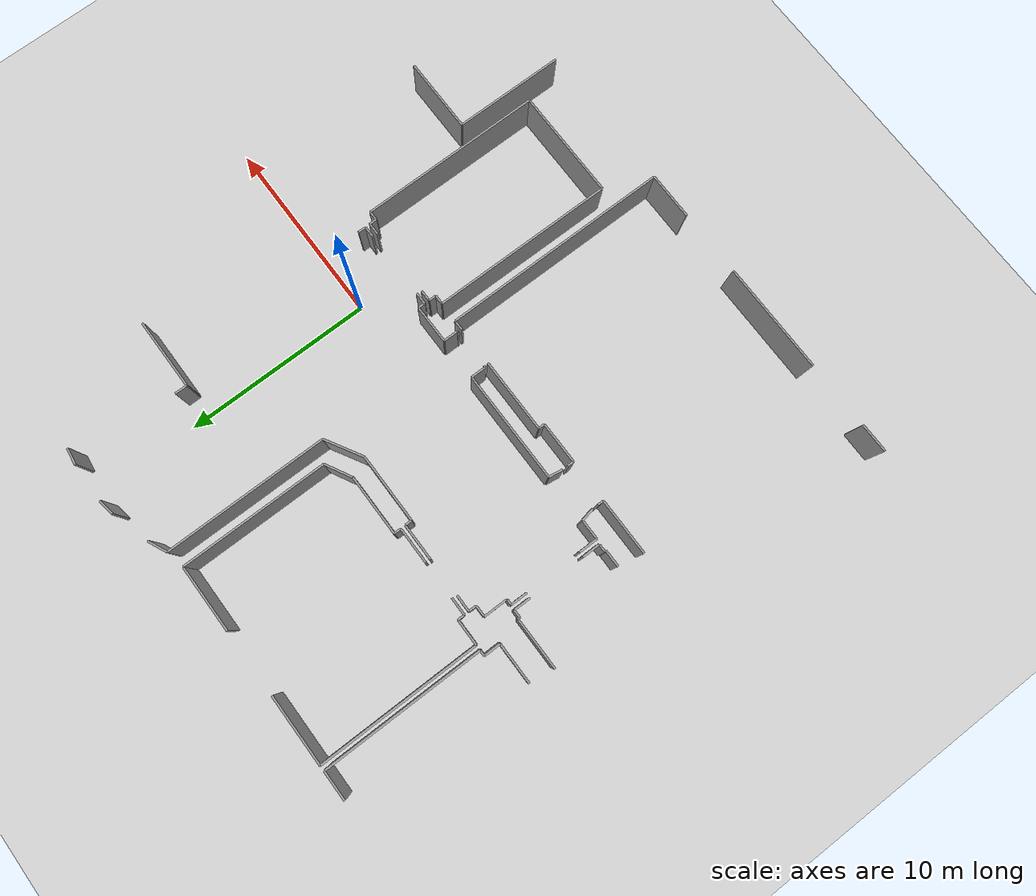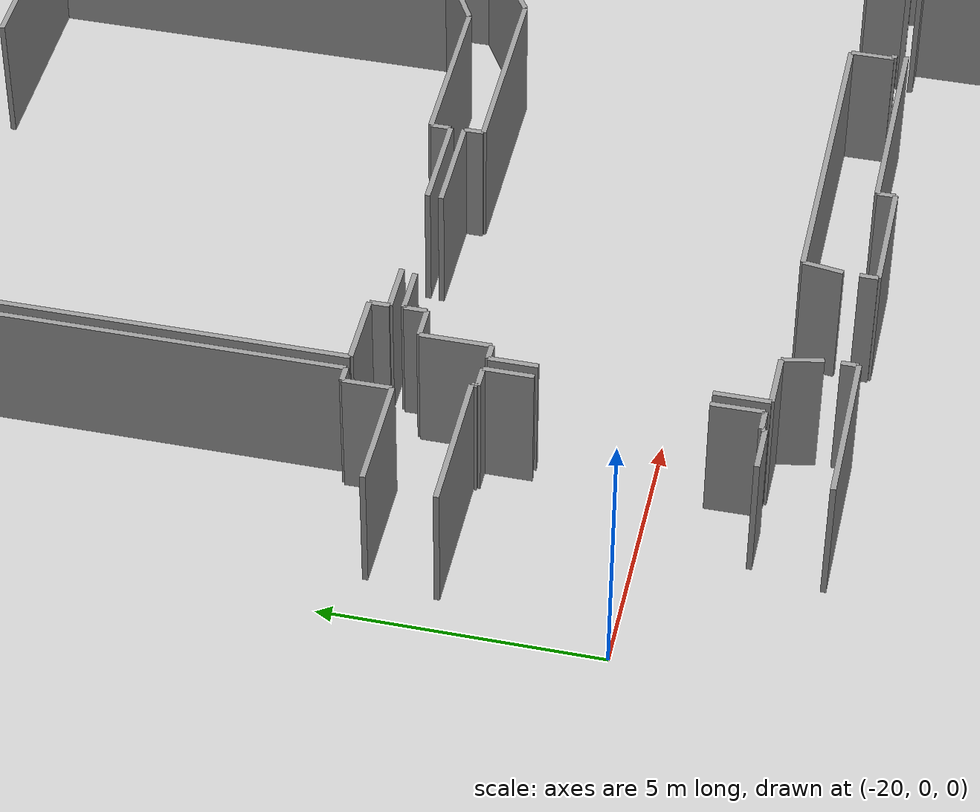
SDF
<sdf version="1.6">
 <world name="default">
  <model name="ground_plane">
   <static>1</static>
   <link name="link">
    <collision name="collision">
     <geometry><plane><normal>0 0 1</normal><size>100 100</size></plane></geometry>
     <surface><friction><ode><mu>100</mu><mu2>50</mu2></ode></friction></surface>
    </collision>
    <visual name="visual">
     <cast_shadows>0</cast_shadows>
     <geometry><plane><normal>0 0 1</normal><size>100 100</size></plane></geometry>
     <material>
      <script><uri>file://media/materials/scripts/gazebo.material</uri><name>Gazebo/Grey</name></script>
     </material>
    </visual>
   </link>
  </model>
  <model name="50056457">
   <static>1</static>
   <link name="Wall_33">
    <collision name="Wall_33_Collision">
     <geometry><box><size>0.412661036904 0.1 2.5</size></box></geometry>
     <pose>0.206330518452 0 1.25 0 0 0</pose>
    </collision>
    <visual name="Wall_33_Visual">
     <pose>0.206330518452 0 1.25 0 0 0</pose>
     <geometry><box><size>0.412661036904 0.1 2.5</size></box></geometry>
     <material>
      <script><uri>file://media/materials/scripts/gazebo.material</uri><name>Gazebo/Grey</name></script>
      <ambient>1 1 1 1</ambient>
     </material>
    </visual>
    <pose>38.6041350804 -16.9038564156 0 0 0 3.14159265359</pose>
   </link>
   <link name="Wall_34">
    <collision name="Wall_34_Collision">
     <geometry><box><size>0.0672522297417 0.1 2.5</size></box></geometry>
     <pose>0.0336261148709 0 1.25 0 0 0</pose>
    </collision>
    <visual name="Wall_34_Visual">
     <pose>0.0336261148709 0 1.25 0 0 0</pose>
     <geometry><box><size>0.0672522297417 0.1 2.5</size></box></geometry>
     <material>
      <script><uri>file://media/materials/scripts/gazebo.material</uri><name>Gazebo/Grey</name></script>
      <ambient>1 1 1 1</ambient>
     </material>
    </visual>
    <pose>38.1914740435 -16.9038564156 0 0 0 -1.57079632679</pose>
   </link>
   <link name="Wall_35">
    <collision name="Wall_35_Collision">
     <geometry><box><size>0.875803596385 0.1 2.5</size></box></geometry>
     <pose>0.437901798192 0 1.25 0 0 0</pose>
    </collision>
    <visual name="Wall_35_Visual">
     <pose>0.437901798192 0 1.25 0 0 0</pose>
     <geometry><box><size>0.875803596385 0.1 2.5</size></box></geometry>
     <material>
      <script><uri>file://media/materials/scripts/gazebo.material</uri><name>Gazebo/Grey</name></script>
      <ambient>1 1 1 1</ambient>
     </material>
    </visual>
    <pose>38.1914740435 -16.9711086454 0 0 0 3.14159265359</pose>
   </link>
   <link name="Wall_48">
    <collision name="Wall_48_Collision">
     <geometry><box><size>2.67704530632 0.1 2.5</size></box></geometry>
     <pose>1.33852265316 0 1.25 0 0 0</pose>
    </collision>
    <visual name="Wall_48_Visual">
     <pose>1.33852265316 0 1.25 0 0 0</pose>
     <geometry><box><size>2.67704530632 0.1 2.5</size></box></geometry>
     <material>
      <script><uri>file://media/materials/scripts/gazebo.material</uri><name>Gazebo/Grey</name></script>
      <ambient>1 1 1 1</ambient>
     </material>
    </visual>
    <pose>35.49765803 -11.9712356962 0 0 0 0.0</pose>
   </link>
   <link name="Wall_49">
    <collision name="Wall_49_Collision">
     <geometry><box><size>0.106553280875 0.1 2.5</size></box></geometry>
     <pose>0.0532766404377 0 1.25 0 0 0</pose>
    </collision>
    <visual name="Wall_49_Visual">
     <pose>0.0532766404377 0 1.25 0 0 0</pose>
     <geometry><box><size>0.106553280875 0.1 2.5</size></box></geometry>
     <material>
      <script><uri>file://media/materials/scripts/gazebo.material</uri><name>Gazebo/Grey</name></script>
      <ambient>1 1 1 1</ambient>
     </material>
    </visual>
    <pose>38.1747033364 -11.9712356962 0 0 0 -1.57079632679</pose>
   </link>
   <link name="Wall_50">
    <collision name="Wall_50_Collision">
     <geometry><box><size>0.421131091028 0.1 2.5</size></box></geometry>
     <pose>0.210565545514 0 1.25 0 0 0</pose>
    </collision>
    <visual name="Wall_50_Visual">
     <pose>0.210565545514 0 1.25 0 0 0</pose>
     <geometry><box><size>0.421131091028 0.1 2.5</size></box></geometry>
     <material>
      <script><uri>file://media/materials/scripts/gazebo.material</uri><name>Gazebo/Grey</name></script>
      <ambient>1 1 1 1</ambient>
     </material>
    </visual>
    <pose>38.1747033364 -12.0777889771 0 0 0 0.0</pose>
   </link>
   <link name="Wall_51">
    <collision name="Wall_51_Collision">
     <geometry><box><size>0.892743704632 0.1 2.5</size></box></geometry>
     <pose>0.446371852316 0 1.25 0 0 0</pose>
    </collision>
    <visual name="Wall_51_Visual">
     <pose>0.446371852316 0 1.25 0 0 0</pose>
     <geometry><box><size>0.892743704632 0.1 2.5</size></box></geometry>
     <material>
      <script><uri>file://media/materials/scripts/gazebo.material</uri><name>Gazebo/Grey</name></script>
      <ambient>1 1 1 1</ambient>
     </material>
    </visual>
    <pose>38.5958344274 -12.0777889771 0 0 0 -1.57079632679</pose>
   </link>
   <link name="Wall_52">
    <collision name="Wall_52_Collision">
     <geometry><box><size>0.934961421784 0.1 2.5</size></box></geometry>
     <pose>0.467480710892 0 1.25 0 0 0</pose>
    </collision>
    <visual name="Wall_52_Visual">
     <pose>0.467480710892 0 1.25 0 0 0</pose>
     <geometry><box><size>0.934961421784 0.1 2.5</size></box></geometry>
     <material>
      <script><uri>file://media/materials/scripts/gazebo.material</uri><name>Gazebo/Grey</name></script>
      <ambient>1 1 1 1</ambient>
     </material>
    </visual>
    <pose>38.5958344274 -15.9689318415 0 0 0 -1.56191814006</pose>
   </link>
   <link name="Wall_76">
    <collision name="Wall_76_Collision">
     <geometry><box><size>2.13089621643 0.1 2.5</size></box></geometry>
     <pose>1.06544810821 0 1.25 0 0 0</pose>
    </collision>
    <visual name="Wall_76_Visual">
     <pose>1.06544810821 0 1.25 0 0 0</pose>
     <geometry><box><size>2.13089621643 0.1 2.5</size></box></geometry>
     <material>
      <script><uri>file://media/materials/scripts/gazebo.material</uri><name>Gazebo/Grey</name></script>
      <ambient>1 1 1 1</ambient>
     </material>
    </visual>
    <pose>37.812523822 -10.6881918975 0 0 0 3.14159265359</pose>
   </link>
   <link name="Wall_82">
    <collision name="Wall_82_Collision">
     <geometry><box><size>1.53121638447 0.1 2.5</size></box></geometry>
     <pose>0.765608192236 0 1.25 0 0 0</pose>
    </collision>
    <visual name="Wall_82_Visual">
     <pose>0.765608192236 0 1.25 0 0 0</pose>
     <geometry><box><size>1.53121638447 0.1 2.5</size></box></geometry>
     <material>
      <script><uri>file://media/materials/scripts/gazebo.material</uri><name>Gazebo/Grey</name></script>
      <ambient>1 1 1 1</ambient>
     </material>
    </visual>
    <pose>36.58216376 -1.3753673886 0 0 0 0.0</pose>
   </link>
   <link name="Wall_83">
    <collision name="Wall_83_Collision">
     <geometry><box><size>8.44091713746 0.1 2.5</size></box></geometry>
     <pose>4.22045856873 0 1.25 0 0 0</pose>
    </collision>
    <visual name="Wall_83_Visual">
     <pose>4.22045856873 0 1.25 0 0 0</pose>
     <geometry><box><size>8.44091713746 0.1 2.5</size></box></geometry>
     <material>
      <script><uri>file://media/materials/scripts/gazebo.material</uri><name>Gazebo/Grey</name></script>
      <ambient>1 1 1 1</ambient>
     </material>
    </visual>
    <pose>38.1133801445 -1.3753673886 0 0 0 -1.57079632679</pose>
   </link>
   <link name="Wall_84">
    <collision name="Wall_84_Collision">
     <geometry><box><size>0.302380932214 0.1 2.5</size></box></geometry>
     <pose>0.151190466107 0 1.25 0 0 0</pose>
    </collision>
    <visual name="Wall_84_Visual">
     <pose>0.151190466107 0 1.25 0 0 0</pose>
     <geometry><box><size>0.302380932214 0.1 2.5</size></box></geometry>
     <material>
      <script><uri>file://media/materials/scripts/gazebo.material</uri><name>Gazebo/Grey</name></script>
      <ambient>1 1 1 1</ambient>
     </material>
    </visual>
    <pose>38.1133801445 -9.81628452606 0 0 0 3.14159265359</pose>
   </link>
   <link name="Wall_85">
    <collision name="Wall_85_Collision">
     <geometry><box><size>0.871908704447 0.1 2.5</size></box></geometry>
     <pose>0.435954352223 0 1.25 0 0 0</pose>
    </collision>
    <visual name="Wall_85_Visual">
     <pose>0.435954352223 0 1.25 0 0 0</pose>
     <geometry><box><size>0.871908704447 0.1 2.5</size></box></geometry>
     <material>
      <script><uri>file://media/materials/scripts/gazebo.material</uri><name>Gazebo/Grey</name></script>
      <ambient>1 1 1 1</ambient>
     </material>
    </visual>
    <pose>37.8109992123 -9.81628452606 0 0 0 -1.56904773716</pose>
   </link>
   <link name="Wall_86">
    <collision name="Wall_86_Collision">
     <geometry><box><size>3.1962596241 0.1 2.5</size></box></geometry>
     <pose>1.59812981205 0 1.25 0 0 0</pose>
    </collision>
    <visual name="Wall_86_Visual">
     <pose>1.59812981205 0 1.25 0 0 0</pose>
     <geometry><box><size>3.1962596241 0.1 2.5</size></box></geometry>
     <material>
      <script><uri>file://media/materials/scripts/gazebo.material</uri><name>Gazebo/Grey</name></script>
      <ambient>1 1 1 1</ambient>
     </material>
    </visual>
    <pose>47.7499301221 -9.81137189467 0 0 0 3.14159265359</pose>
   </link>
   <link name="Wall_87">
    <collision name="Wall_87_Collision">
     <geometry><box><size>0.368108552214 0.1 2.5</size></box></geometry>
     <pose>0.184054276107 0 1.25 0 0 0</pose>
    </collision>
    <visual name="Wall_87_Visual">
     <pose>0.184054276107 0 1.25 0 0 0</pose>
     <geometry><box><size>0.368108552214 0.1 2.5</size></box></geometry>
     <material>
      <script><uri>file://media/materials/scripts/gazebo.material</uri><name>Gazebo/Grey</name></script>
      <ambient>1 1 1 1</ambient>
     </material>
    </visual>
    <pose>44.553670498 -9.81137189467 0 0 0 -1.57079632679</pose>
   </link>
   <link name="Wall_88">
    <collision name="Wall_88_Collision">
     <geometry><box><size>1.88865266849 0.1 2.5</size></box></geometry>
     <pose>0.944326334245 0 1.25 0 0 0</pose>
    </collision>
    <visual name="Wall_88_Visual">
     <pose>0.944326334245 0 1.25 0 0 0</pose>
     <geometry><box><size>1.88865266849 0.1 2.5</size></box></geometry>
     <material>
      <script><uri>file://media/materials/scripts/gazebo.material</uri><name>Gazebo/Grey</name></script>
      <ambient>1 1 1 1</ambient>
     </material>
    </visual>
    <pose>44.553670498 -10.1794804469 0 0 0 3.14159265359</pose>
   </link>
   <link name="Wall_89">
    <collision name="Wall_89_Collision">
     <geometry><box><size>0.934924574168 0.1 2.5</size></box></geometry>
     <pose>0.467462287084 0 1.25 0 0 0</pose>
    </collision>
    <visual name="Wall_89_Visual">
     <pose>0.467462287084 0 1.25 0 0 0</pose>
     <geometry><box><size>0.934924574168 0.1 2.5</size></box></geometry>
     <material>
      <script><uri>file://media/materials/scripts/gazebo.material</uri><name>Gazebo/Grey</name></script>
      <ambient>1 1 1 1</ambient>
     </material>
    </visual>
    <pose>40.7013204814 -10.1794804469 0 0 0 3.14159265359</pose>
   </link>
   <link name="Wall_90">
    <collision name="Wall_90_Collision">
     <geometry><box><size>0.358791492678 0.1 2.5</size></box></geometry>
     <pose>0.179395746339 0 1.25 0 0 0</pose>
    </collision>
    <visual name="Wall_90_Visual">
     <pose>0.179395746339 0 1.25 0 0 0</pose>
     <geometry><box><size>0.358791492678 0.1 2.5</size></box></geometry>
     <material>
      <script><uri>file://media/materials/scripts/gazebo.material</uri><name>Gazebo/Grey</name></script>
      <ambient>1 1 1 1</ambient>
     </material>
    </visual>
    <pose>39.7663959073 -10.1794804469 0 0 0 1.57079632679</pose>
   </link>
   <link name="Wall_91">
    <collision name="Wall_91_Collision">
     <geometry><box><size>1.37282637236 0.1 2.5</size></box></geometry>
     <pose>0.68641318618 0 1.25 0 0 0</pose>
    </collision>
    <visual name="Wall_91_Visual">
     <pose>0.68641318618 0 1.25 0 0 0</pose>
     <geometry><box><size>1.37282637236 0.1 2.5</size></box></geometry>
     <material>
      <script><uri>file://media/materials/scripts/gazebo.material</uri><name>Gazebo/Grey</name></script>
      <ambient>1 1 1 1</ambient>
     </material>
    </visual>
    <pose>39.7663959073 -9.8206889542 0 0 0 3.14159265359</pose>
   </link>
   <link name="Wall_92">
    <collision name="Wall_92_Collision">
     <geometry><box><size>8.4559938338 0.1 2.5</size></box></geometry>
     <pose>4.2279969169 0 1.25 0 0 0</pose>
    </collision>
    <visual name="Wall_92_Visual">
     <pose>4.2279969169 0 1.25 0 0 0</pose>
     <geometry><box><size>8.4559938338 0.1 2.5</size></box></geometry>
     <material>
      <script><uri>file://media/materials/scripts/gazebo.material</uri><name>Gazebo/Grey</name></script>
      <ambient>1 1 1 1</ambient>
     </material>
    </visual>
    <pose>38.3935695349 -9.8206889542 0 0 0 1.57079632679</pose>
   </link>
   <link name="Wall_93">
    <collision name="Wall_93_Collision">
     <geometry><box><size>3.66380661172 0.1 2.5</size></box></geometry>
     <pose>1.83190330586 0 1.25 0 0 0</pose>
    </collision>
    <visual name="Wall_93_Visual">
     <pose>1.83190330586 0 1.25 0 0 0</pose>
     <geometry><box><size>3.66380661172 0.1 2.5</size></box></geometry>
     <material>
      <script><uri>file://media/materials/scripts/gazebo.material</uri><name>Gazebo/Grey</name></script>
      <ambient>1 1 1 1</ambient>
     </material>
    </visual>
    <pose>38.3935695349 -1.3646951204 0 0 0 0.0</pose>
   </link>
   <link name="Wall_94">
    <collision name="Wall_94_Collision">
     <geometry><box><size>3.52167910353 0.1 2.5</size></box></geometry>
     <pose>1.76083955176 0 1.25 0 0 0</pose>
    </collision>
    <visual name="Wall_94_Visual">
     <pose>1.76083955176 0 1.25 0 0 0</pose>
     <geometry><box><size>3.52167910353 0.1 2.5</size></box></geometry>
     <material>
      <script><uri>file://media/materials/scripts/gazebo.material</uri><name>Gazebo/Grey</name></script>
      <ambient>1 1 1 1</ambient>
     </material>
    </visual>
    <pose>45.5338251611 -1.3646951204 0 0 0 0.0</pose>
   </link>
   <link name="Wall_95">
    <collision name="Wall_95_Collision">
     <geometry><box><size>7.74010485927 0.1 2.5</size></box></geometry>
     <pose>3.87005242964 0 1.25 0 0 0</pose>
    </collision>
    <visual name="Wall_95_Visual">
     <pose>3.87005242964 0 1.25 0 0 0</pose>
     <geometry><box><size>7.74010485927 0.1 2.5</size></box></geometry>
     <material>
      <script><uri>file://media/materials/scripts/gazebo.material</uri><name>Gazebo/Grey</name></script>
      <ambient>1 1 1 1</ambient>
     </material>
    </visual>
    <pose>49.0555042647 -1.3646951204 0 0 0 -1.57079632679</pose>
   </link>
   <link name="Wall_96">
    <collision name="Wall_96_Collision">
     <geometry><box><size>1.48450924986 0.1 2.5</size></box></geometry>
     <pose>0.742254624932 0 1.25 0 0 0</pose>
    </collision>
    <visual name="Wall_96_Visual">
     <pose>0.742254624932 0 1.25 0 0 0</pose>
     <geometry><box><size>1.48450924986 0.1 2.5</size></box></geometry>
     <material>
      <script><uri>file://media/materials/scripts/gazebo.material</uri><name>Gazebo/Grey</name></script>
      <ambient>1 1 1 1</ambient>
     </material>
    </visual>
    <pose>49.0555042647 -9.10479997967 0 0 0 -2.64553362623</pose>
   </link>
   <link name="Wall_97">
    <collision name="Wall_97_Collision">
     <geometry><box><size>2.49409213725 0.1 2.5</size></box></geometry>
     <pose>1.24704606862 0 1.25 0 0 0</pose>
    </collision>
    <visual name="Wall_97_Visual">
     <pose>1.24704606862 0 1.25 0 0 0</pose>
     <geometry><box><size>2.49409213725 0.1 2.5</size></box></geometry>
     <material>
      <script><uri>file://media/materials/scripts/gazebo.material</uri><name>Gazebo/Grey</name></script>
      <ambient>1 1 1 1</ambient>
     </material>
    </visual>
    <pose>50.8977410366 -30.0143143915 0 0 0 3.14159265359</pose>
   </link>
   <link name="Wall_98">
    <collision name="Wall_98_Collision">
     <geometry><box><size>5.82536442408 0.1 2.5</size></box></geometry>
     <pose>2.91268221204 0 1.25 0 0 0</pose>
    </collision>
    <visual name="Wall_98_Visual">
     <pose>2.91268221204 0 1.25 0 0 0</pose>
     <geometry><box><size>5.82536442408 0.1 2.5</size></box></geometry>
     <material>
      <script><uri>file://media/materials/scripts/gazebo.material</uri><name>Gazebo/Grey</name></script>
      <ambient>1 1 1 1</ambient>
     </material>
    </visual>
    <pose>44.917374622 -30.0143143915 0 0 0 3.14159265359</pose>
   </link>
   <link name="Wall_99">
    <collision name="Wall_99_Collision">
     <geometry><box><size>1.54121104834 0.1 2.5</size></box></geometry>
     <pose>0.770605524169 0 1.25 0 0 0</pose>
    </collision>
    <visual name="Wall_99_Visual">
     <pose>0.770605524169 0 1.25 0 0 0</pose>
     <geometry><box><size>1.54121104834 0.1 2.5</size></box></geometry>
     <material>
      <script><uri>file://media/materials/scripts/gazebo.material</uri><name>Gazebo/Grey</name></script>
      <ambient>1 1 1 1</ambient>
     </material>
    </visual>
    <pose>35.5889652135 -30.0143143915 0 0 0 3.14159265359</pose>
   </link>
   <link name="Wall_102">
    <collision name="Wall_102_Collision">
     <geometry><box><size>2.97349720065 0.1 2.5</size></box></geometry>
     <pose>1.48674860032 0 1.25 0 0 0</pose>
    </collision>
    <visual name="Wall_102_Visual">
     <pose>1.48674860032 0 1.25 0 0 0</pose>
     <geometry><box><size>2.97349720065 0.1 2.5</size></box></geometry>
     <material>
      <script><uri>file://media/materials/scripts/gazebo.material</uri><name>Gazebo/Grey</name></script>
      <ambient>1 1 1 1</ambient>
     </material>
    </visual>
    <pose>37.0666508559 -18.2744805739 0 0 0 0.0</pose>
   </link>
   <link name="Wall_103">
    <collision name="Wall_103_Collision">
     <geometry><box><size>0.307971167936 0.1 2.5</size></box></geometry>
     <pose>0.153985583968 0 1.25 0 0 0</pose>
    </collision>
    <visual name="Wall_103_Visual">
     <pose>0.153985583968 0 1.25 0 0 0</pose>
     <geometry><box><size>0.307971167936 0.1 2.5</size></box></geometry>
     <material>
      <script><uri>file://media/materials/scripts/gazebo.material</uri><name>Gazebo/Grey</name></script>
      <ambient>1 1 1 1</ambient>
     </material>
    </visual>
    <pose>40.0401480565 -18.2744805739 0 0 0 1.57079632679</pose>
   </link>
   <link name="Wall_104">
    <collision name="Wall_104_Collision">
     <geometry><box><size>0.331179116235 0.1 2.5</size></box></geometry>
     <pose>0.165589558117 0 1.25 0 0 0</pose>
    </collision>
    <visual name="Wall_104_Visual">
     <pose>0.165589558117 0 1.25 0 0 0</pose>
     <geometry><box><size>0.331179116235 0.1 2.5</size></box></geometry>
     <material>
      <script><uri>file://media/materials/scripts/gazebo.material</uri><name>Gazebo/Grey</name></script>
      <ambient>1 1 1 1</ambient>
     </material>
    </visual>
    <pose>42.2667558846 -17.966509406 0 0 0 -1.57079632679</pose>
   </link>
   <link name="Wall_105">
    <collision name="Wall_105_Collision">
     <geometry><box><size>2.18442695849 0.1 2.5</size></box></geometry>
     <pose>1.09221347924 0 1.25 0 0 0</pose>
    </collision>
    <visual name="Wall_105_Visual">
     <pose>1.09221347924 0 1.25 0 0 0</pose>
     <geometry><box><size>2.18442695849 0.1 2.5</size></box></geometry>
     <material>
      <script><uri>file://media/materials/scripts/gazebo.material</uri><name>Gazebo/Grey</name></script>
      <ambient>1 1 1 1</ambient>
     </material>
    </visual>
    <pose>42.2667558846 -18.2976885222 0 0 0 0.0</pose>
   </link>
   <link name="Wall_106">
    <collision name="Wall_106_Collision">
     <geometry><box><size>0.324911276183 0.1 2.5</size></box></geometry>
     <pose>0.162455638092 0 1.25 0 0 0</pose>
    </collision>
    <visual name="Wall_106_Visual">
     <pose>0.162455638092 0 1.25 0 0 0</pose>
     <geometry><box><size>0.324911276183 0.1 2.5</size></box></geometry>
     <material>
      <script><uri>file://media/materials/scripts/gazebo.material</uri><name>Gazebo/Grey</name></script>
      <ambient>1 1 1 1</ambient>
     </material>
    </visual>
    <pose>44.4511828431 -18.2976885222 0 0 0 1.57079632679</pose>
   </link>
   <link name="Wall_107">
    <collision name="Wall_107_Collision">
     <geometry><box><size>3.88690783734 0.1 2.5</size></box></geometry>
     <pose>1.94345391867 0 1.25 0 0 0</pose>
    </collision>
    <visual name="Wall_107_Visual">
     <pose>1.94345391867 0 1.25 0 0 0</pose>
     <geometry><box><size>3.88690783734 0.1 2.5</size></box></geometry>
     <material>
      <script><uri>file://media/materials/scripts/gazebo.material</uri><name>Gazebo/Grey</name></script>
      <ambient>1 1 1 1</ambient>
     </material>
    </visual>
    <pose>44.4511828431 -17.972777246 0 0 0 0.0</pose>
   </link>
   <link name="Wall_108">
    <collision name="Wall_108_Collision">
     <geometry><box><size>0.555974352676 0.1 2.5</size></box></geometry>
     <pose>0.277987176338 0 1.25 0 0 0</pose>
    </collision>
    <visual name="Wall_108_Visual">
     <pose>0.277987176338 0 1.25 0 0 0</pose>
     <geometry><box><size>0.555974352676 0.1 2.5</size></box></geometry>
     <material>
      <script><uri>file://media/materials/scripts/gazebo.material</uri><name>Gazebo/Grey</name></script>
      <ambient>1 1 1 1</ambient>
     </material>
    </visual>
    <pose>50.3278757951 -17.972777246 0 0 0 0.0</pose>
   </link>
   <link name="Wall_109">
    <collision name="Wall_109_Collision">
     <geometry><box><size>12.0415451576 0.1 2.5</size></box></geometry>
     <pose>6.02077257878 0 1.25 0 0 0</pose>
    </collision>
    <visual name="Wall_109_Visual">
     <pose>6.02077257878 0 1.25 0 0 0</pose>
     <geometry><box><size>12.0415451576 0.1 2.5</size></box></geometry>
     <material>
      <script><uri>file://media/materials/scripts/gazebo.material</uri><name>Gazebo/Grey</name></script>
      <ambient>1 1 1 1</ambient>
     </material>
    </visual>
    <pose>50.8838501478 -17.972777246 0 0 0 -1.56964274628</pose>
   </link>
   <link name="Wall_113">
    <collision name="Wall_113_Collision">
     <geometry><box><size>0.430617551646 0.1 2.5</size></box></geometry>
     <pose>0.215308775823 0 1.25 0 0 0</pose>
    </collision>
    <visual name="Wall_113_Visual">
     <pose>0.215308775823 0 1.25 0 0 0</pose>
     <geometry><box><size>0.430617551646 0.1 2.5</size></box></geometry>
     <material>
      <script><uri>file://media/materials/scripts/gazebo.material</uri><name>Gazebo/Grey</name></script>
      <ambient>1 1 1 1</ambient>
     </material>
    </visual>
    <pose>57.2030187273 -16.9040258167 0 0 0 -1.57079632679</pose>
   </link>
   <link name="Wall_114">
    <collision name="Wall_114_Collision">
     <geometry><box><size>0.567154824119 0.1 2.5</size></box></geometry>
     <pose>0.28357741206 0 1.25 0 0 0</pose>
    </collision>
    <visual name="Wall_114_Visual">
     <pose>0.28357741206 0 1.25 0 0 0</pose>
     <geometry><box><size>0.567154824119 0.1 2.5</size></box></geometry>
     <material>
      <script><uri>file://media/materials/scripts/gazebo.material</uri><name>Gazebo/Grey</name></script>
      <ambient>1 1 1 1</ambient>
     </material>
    </visual>
    <pose>57.2030187273 -17.3346433684 0 0 0 3.14159265359</pose>
   </link>
   <link name="Wall_115">
    <collision name="Wall_115_Collision">
     <geometry><box><size>0.622548978088 0.1 2.5</size></box></geometry>
     <pose>0.311274489044 0 1.25 0 0 0</pose>
    </collision>
    <visual name="Wall_115_Visual">
     <pose>0.311274489044 0 1.25 0 0 0</pose>
     <geometry><box><size>0.622548978088 0.1 2.5</size></box></geometry>
     <material>
      <script><uri>file://media/materials/scripts/gazebo.material</uri><name>Gazebo/Grey</name></script>
      <ambient>1 1 1 1</ambient>
     </material>
    </visual>
    <pose>53.0618398652 -17.3346433684 0 0 0 3.14159265359</pose>
   </link>
   <link name="Wall_116">
    <collision name="Wall_116_Collision">
     <geometry><box><size>0.356589278605 0.1 2.5</size></box></geometry>
     <pose>0.178294639303 0 1.25 0 0 0</pose>
    </collision>
    <visual name="Wall_116_Visual">
     <pose>0.178294639303 0 1.25 0 0 0</pose>
     <geometry><box><size>0.356589278605 0.1 2.5</size></box></geometry>
     <material>
      <script><uri>file://media/materials/scripts/gazebo.material</uri><name>Gazebo/Grey</name></script>
      <ambient>1 1 1 1</ambient>
     </material>
    </visual>
    <pose>52.4392908871 -17.3346433684 0 0 0 1.57079632679</pose>
   </link>
   <link name="Wall_117">
    <collision name="Wall_117_Collision">
     <geometry><box><size>2.02129371607 0.1 2.5</size></box></geometry>
     <pose>1.01064685803 0 1.25 0 0 0</pose>
    </collision>
    <visual name="Wall_117_Visual">
     <pose>1.01064685803 0 1.25 0 0 0</pose>
     <geometry><box><size>2.02129371607 0.1 2.5</size></box></geometry>
     <material>
      <script><uri>file://media/materials/scripts/gazebo.material</uri><name>Gazebo/Grey</name></script>
      <ambient>1 1 1 1</ambient>
     </material>
    </visual>
    <pose>52.4392908871 -16.9780540898 0 0 0 3.14159265359</pose>
   </link>
   <link name="Wall_118">
    <collision name="Wall_118_Collision">
     <geometry><box><size>0.78161659453 0.1 2.5</size></box></geometry>
     <pose>0.390808297265 0 1.25 0 0 0</pose>
    </collision>
    <visual name="Wall_118_Visual">
     <pose>0.390808297265 0 1.25 0 0 0</pose>
     <geometry><box><size>0.78161659453 0.1 2.5</size></box></geometry>
     <material>
      <script><uri>file://media/materials/scripts/gazebo.material</uri><name>Gazebo/Grey</name></script>
      <ambient>1 1 1 1</ambient>
     </material>
    </visual>
    <pose>50.417997171 -16.9780540898 0 0 0 -1.57079632679</pose>
   </link>
   <link name="Wall_119">
    <collision name="Wall_119_Collision">
     <geometry><box><size>0.0699626470613 0.1 2.5</size></box></geometry>
     <pose>0.0349813235307 0 1.25 0 0 0</pose>
    </collision>
    <visual name="Wall_119_Visual">
     <pose>0.0349813235307 0 1.25 0 0 0</pose>
     <geometry><box><size>0.0699626470613 0.1 2.5</size></box></geometry>
     <material>
      <script><uri>file://media/materials/scripts/gazebo.material</uri><name>Gazebo/Grey</name></script>
      <ambient>1 1 1 1</ambient>
     </material>
    </visual>
    <pose>50.417997171 -17.7596706843 0 0 0 3.14159265359</pose>
   </link>
   <link name="Wall_120">
    <collision name="Wall_120_Collision">
     <geometry><box><size>0.096728018092 0.1 2.5</size></box></geometry>
     <pose>0.048364009046 0 1.25 0 0 0</pose>
    </collision>
    <visual name="Wall_120_Visual">
     <pose>0.048364009046 0 1.25 0 0 0</pose>
     <geometry><box><size>0.096728018092 0.1 2.5</size></box></geometry>
     <material>
      <script><uri>file://media/materials/scripts/gazebo.material</uri><name>Gazebo/Grey</name></script>
      <ambient>1 1 1 1</ambient>
     </material>
    </visual>
    <pose>48.3406316966 -17.7596706843 0 0 0 3.14159265359</pose>
   </link>
   <link name="Wall_121">
    <collision name="Wall_121_Collision">
     <geometry><box><size>0.800250713602 0.1 2.5</size></box></geometry>
     <pose>0.400125356801 0 1.25 0 0 0</pose>
    </collision>
    <visual name="Wall_121_Visual">
     <pose>0.400125356801 0 1.25 0 0 0</pose>
     <geometry><box><size>0.800250713602 0.1 2.5</size></box></geometry>
     <material>
      <script><uri>file://media/materials/scripts/gazebo.material</uri><name>Gazebo/Grey</name></script>
      <ambient>1 1 1 1</ambient>
     </material>
    </visual>
    <pose>48.2439036785 -17.7596706843 0 0 0 1.57079632679</pose>
   </link>
   <link name="Wall_122">
    <collision name="Wall_122_Collision">
     <geometry><box><size>5.85721182758 0.1 2.5</size></box></geometry>
     <pose>2.92860591379 0 1.25 0 0 0</pose>
    </collision>
    <visual name="Wall_122_Visual">
     <pose>2.92860591379 0 1.25 0 0 0</pose>
     <geometry><box><size>5.85721182758 0.1 2.5</size></box></geometry>
     <material>
      <script><uri>file://media/materials/scripts/gazebo.material</uri><name>Gazebo/Grey</name></script>
      <ambient>1 1 1 1</ambient>
     </material>
    </visual>
    <pose>48.2439036785 -16.9594199707 0 0 0 3.14159265359</pose>
   </link>
   <link name="Wall_123">
    <collision name="Wall_123_Collision">
     <geometry><box><size>0.734538408301 0.1 2.5</size></box></geometry>
     <pose>0.36726920415 0 1.25 0 0 0</pose>
    </collision>
    <visual name="Wall_123_Visual">
     <pose>0.36726920415 0 1.25 0 0 0</pose>
     <geometry><box><size>0.734538408301 0.1 2.5</size></box></geometry>
     <material>
      <script><uri>file://media/materials/scripts/gazebo.material</uri><name>Gazebo/Grey</name></script>
      <ambient>1 1 1 1</ambient>
     </material>
    </visual>
    <pose>42.386691851 -16.9594199707 0 0 0 -1.71986873118</pose>
   </link>
   <link name="Wall_124">
    <collision name="Wall_124_Collision">
     <geometry><box><size>0.731291150777 0.1 2.5</size></box></geometry>
     <pose>0.365645575388 0 1.25 0 0 0</pose>
    </collision>
    <visual name="Wall_124_Visual">
     <pose>0.365645575388 0 1.25 0 0 0</pose>
     <geometry><box><size>0.731291150777 0.1 2.5</size></box></geometry>
     <material>
      <script><uri>file://media/materials/scripts/gazebo.material</uri><name>Gazebo/Grey</name></script>
      <ambient>1 1 1 1</ambient>
     </material>
    </visual>
    <pose>40.0401480565 -17.6858118123 0 0 0 1.77064508906</pose>
   </link>
   <link name="Wall_125">
    <collision name="Wall_125_Collision">
     <geometry><box><size>1.03639582257 0.1 2.5</size></box></geometry>
     <pose>0.518197911285 0 1.25 0 0 0</pose>
    </collision>
    <visual name="Wall_125_Visual">
     <pose>0.518197911285 0 1.25 0 0 0</pose>
     <geometry><box><size>1.03639582257 0.1 2.5</size></box></geometry>
     <material>
      <script><uri>file://media/materials/scripts/gazebo.material</uri><name>Gazebo/Grey</name></script>
      <ambient>1 1 1 1</ambient>
     </material>
    </visual>
    <pose>39.8949713289 -16.9690758324 0 0 0 3.14159265359</pose>
   </link>
   <link name="Wall_126">
    <collision name="Wall_126_Collision">
     <geometry><box><size>0.997602974683 0.1 2.5</size></box></geometry>
     <pose>0.498801487342 0 1.25 0 0 0</pose>
    </collision>
    <visual name="Wall_126_Visual">
     <pose>0.498801487342 0 1.25 0 0 0</pose>
     <geometry><box><size>0.997602974683 0.1 2.5</size></box></geometry>
     <material>
      <script><uri>file://media/materials/scripts/gazebo.material</uri><name>Gazebo/Grey</name></script>
      <ambient>1 1 1 1</ambient>
     </material>
    </visual>
    <pose>38.8585755063 -16.9690758324 0 0 0 1.57079632679</pose>
   </link>
   <link name="Wall_127">
    <collision name="Wall_127_Collision">
     <geometry><box><size>0.874956590973 0.1 2.5</size></box></geometry>
     <pose>0.437478295486 0 1.25 0 0 0</pose>
    </collision>
    <visual name="Wall_127_Visual">
     <pose>0.437478295486 0 1.25 0 0 0</pose>
     <geometry><box><size>0.874956590973 0.1 2.5</size></box></geometry>
     <material>
      <script><uri>file://media/materials/scripts/gazebo.material</uri><name>Gazebo/Grey</name></script>
      <ambient>1 1 1 1</ambient>
     </material>
    </visual>
    <pose>38.8585755063 -12.9857787791 0 0 0 1.57079632679</pose>
   </link>
   <link name="Wall_128">
    <collision name="Wall_128_Collision">
     <geometry><box><size>0.311359189585 0.1 2.5</size></box></geometry>
     <pose>0.155679594793 0 1.25 0 0 0</pose>
    </collision>
    <visual name="Wall_128_Visual">
     <pose>0.155679594793 0 1.25 0 0 0</pose>
     <geometry><box><size>0.311359189585 0.1 2.5</size></box></geometry>
     <material>
      <script><uri>file://media/materials/scripts/gazebo.material</uri><name>Gazebo/Grey</name></script>
      <ambient>1 1 1 1</ambient>
     </material>
    </visual>
    <pose>38.8585755063 -12.1108221882 0 0 0 0.0</pose>
   </link>
   <link name="Wall_129">
    <collision name="Wall_129_Collision">
     <geometry><box><size>1.26983051422 0.1 2.5</size></box></geometry>
     <pose>0.634915257108 0 1.25 0 0 0</pose>
    </collision>
    <visual name="Wall_129_Visual">
     <pose>0.634915257108 0 1.25 0 0 0</pose>
     <geometry><box><size>1.26983051422 0.1 2.5</size></box></geometry>
     <material>
      <script><uri>file://media/materials/scripts/gazebo.material</uri><name>Gazebo/Grey</name></script>
      <ambient>1 1 1 1</ambient>
     </material>
    </visual>
    <pose>39.1699346959 -12.1108221882 0 0 0 1.57079632679</pose>
   </link>
   <link name="Wall_130">
    <collision name="Wall_130_Collision">
     <geometry><box><size>0.601543243861 0.1 2.5</size></box></geometry>
     <pose>0.300771621931 0 1.25 0 0 0</pose>
    </collision>
    <visual name="Wall_130_Visual">
     <pose>0.300771621931 0 1.25 0 0 0</pose>
     <geometry><box><size>0.601543243861 0.1 2.5</size></box></geometry>
     <material>
      <script><uri>file://media/materials/scripts/gazebo.material</uri><name>Gazebo/Grey</name></script>
      <ambient>1 1 1 1</ambient>
     </material>
    </visual>
    <pose>39.1699346959 -10.8409916739 0 0 0 0.0</pose>
   </link>
   <link name="Wall_131">
    <collision name="Wall_131_Collision">
     <geometry><box><size>0.412152833657 0.1 2.5</size></box></geometry>
     <pose>0.206076416828 0 1.25 0 0 0</pose>
    </collision>
    <visual name="Wall_131_Visual">
     <pose>0.206076416828 0 1.25 0 0 0</pose>
     <geometry><box><size>0.412152833657 0.1 2.5</size></box></geometry>
     <material>
      <script><uri>file://media/materials/scripts/gazebo.material</uri><name>Gazebo/Grey</name></script>
      <ambient>1 1 1 1</ambient>
     </material>
    </visual>
    <pose>39.7714779397 -10.8409916739 0 0 0 1.57079632679</pose>
   </link>
   <link name="Wall_132">
    <collision name="Wall_132_Collision">
     <geometry><box><size>0.868688750921 0.1 2.5</size></box></geometry>
     <pose>0.434344375461 0 1.25 0 0 0</pose>
    </collision>
    <visual name="Wall_132_Visual">
     <pose>0.434344375461 0 1.25 0 0 0</pose>
     <geometry><box><size>0.868688750921 0.1 2.5</size></box></geometry>
     <material>
      <script><uri>file://media/materials/scripts/gazebo.material</uri><name>Gazebo/Grey</name></script>
      <ambient>1 1 1 1</ambient>
     </material>
    </visual>
    <pose>39.7714779397 -10.4288388403 0 0 0 0.0</pose>
   </link>
   <link name="Wall_133">
    <collision name="Wall_133_Collision">
     <geometry><box><size>1.91592624277 0.1 2.5</size></box></geometry>
     <pose>0.957963121384 0 1.25 0 0 0</pose>
    </collision>
    <visual name="Wall_133_Visual">
     <pose>0.957963121384 0 1.25 0 0 0</pose>
     <geometry><box><size>1.91592624277 0.1 2.5</size></box></geometry>
     <material>
      <script><uri>file://media/materials/scripts/gazebo.material</uri><name>Gazebo/Grey</name></script>
      <ambient>1 1 1 1</ambient>
     </material>
    </visual>
    <pose>42.6450285017 -10.4288388403 0 0 0 0.0</pose>
   </link>
   <link name="Wall_134">
    <collision name="Wall_134_Collision">
     <geometry><box><size>0.356419877523 0.1 2.5</size></box></geometry>
     <pose>0.178209938762 0 1.25 0 0 0</pose>
    </collision>
    <visual name="Wall_134_Visual">
     <pose>0.178209938762 0 1.25 0 0 0</pose>
     <geometry><box><size>0.356419877523 0.1 2.5</size></box></geometry>
     <material>
      <script><uri>file://media/materials/scripts/gazebo.material</uri><name>Gazebo/Grey</name></script>
      <ambient>1 1 1 1</ambient>
     </material>
    </visual>
    <pose>44.5609547445 -10.4288388403 0 0 0 -1.57079632679</pose>
   </link>
   <link name="Wall_135">
    <collision name="Wall_135_Collision">
     <geometry><box><size>3.65330374461 0.1 2.5</size></box></geometry>
     <pose>1.82665187231 0 1.25 0 0 0</pose>
    </collision>
    <visual name="Wall_135_Visual">
     <pose>1.82665187231 0 1.25 0 0 0</pose>
     <geometry><box><size>3.65330374461 0.1 2.5</size></box></geometry>
     <material>
      <script><uri>file://media/materials/scripts/gazebo.material</uri><name>Gazebo/Grey</name></script>
      <ambient>1 1 1 1</ambient>
     </material>
    </visual>
    <pose>44.5609547445 -10.7852587178 0 0 0 0.0</pose>
   </link>
   <link name="Wall_136">
    <collision name="Wall_136_Collision">
     <geometry><box><size>2.0958407354 0.1 2.5</size></box></geometry>
     <pose>1.0479203677 0 1.25 0 0 0</pose>
    </collision>
    <visual name="Wall_136_Visual">
     <pose>1.0479203677 0 1.25 0 0 0</pose>
     <geometry><box><size>2.0958407354 0.1 2.5</size></box></geometry>
     <material>
      <script><uri>file://media/materials/scripts/gazebo.material</uri><name>Gazebo/Grey</name></script>
      <ambient>1 1 1 1</ambient>
     </material>
    </visual>
    <pose>48.2142584891 -10.7852587178 0 0 0 0.523035974923</pose>
   </link>
   <link name="Wall_137">
    <collision name="Wall_137_Collision">
     <geometry><box><size>8.57169477313 0.1 2.5</size></box></geometry>
     <pose>4.28584738656 0 1.25 0 0 0</pose>
    </collision>
    <visual name="Wall_137_Visual">
     <pose>4.28584738656 0 1.25 0 0 0</pose>
     <geometry><box><size>8.57169477313 0.1 2.5</size></box></geometry>
     <material>
      <script><uri>file://media/materials/scripts/gazebo.material</uri><name>Gazebo/Grey</name></script>
      <ambient>1 1 1 1</ambient>
     </material>
    </visual>
    <pose>50.0298992911 -9.73836002812 0 0 0 1.57079632679</pose>
   </link>
   <link name="Wall_138">
    <collision name="Wall_138_Collision">
     <geometry><box><size>1.05152329434 0.1 2.5</size></box></geometry>
     <pose>0.525761647171 0 1.25 0 0 0</pose>
    </collision>
    <visual name="Wall_138_Visual">
     <pose>0.525761647171 0 1.25 0 0 0</pose>
     <geometry><box><size>1.05152329434 0.1 2.5</size></box></geometry>
     <material>
      <script><uri>file://media/materials/scripts/gazebo.material</uri><name>Gazebo/Grey</name></script>
      <ambient>1 1 1 1</ambient>
     </material>
    </visual>
    <pose>50.0298992911 -1.16666525499 0 0 0 0.432013964058</pose>
   </link>
   <link name="Wall_139">
    <collision name="Wall_139_Collision">
     <geometry><box><size>0.861500859385 0.1 2.5</size></box></geometry>
     <pose>0.430750429693 0 1.25 0 0 0</pose>
    </collision>
    <visual name="Wall_139_Visual">
     <pose>0.430750429693 0 1.25 0 0 0</pose>
     <geometry><box><size>0.861500859385 0.1 2.5</size></box></geometry>
     <material>
      <script><uri>file://media/materials/scripts/gazebo.material</uri><name>Gazebo/Grey</name></script>
      <ambient>1 1 1 1</ambient>
     </material>
    </visual>
    <pose>52.9510515572 -0.125865004277 0 0 0 0.146624494359</pose>
   </link>
   <link name="Wall_140">
    <collision name="Wall_140_Collision">
     <geometry><box><size>0.871054254833 0.1 2.5</size></box></geometry>
     <pose>0.435527127416 0 1.25 0 0 0</pose>
    </collision>
    <visual name="Wall_140_Visual">
     <pose>0.435527127416 0 1.25 0 0 0</pose>
     <geometry><box><size>0.871054254833 0.1 2.5</size></box></geometry>
     <material>
      <script><uri>file://media/materials/scripts/gazebo.material</uri><name>Gazebo/Grey</name></script>
      <ambient>1 1 1 1</ambient>
     </material>
    </visual>
    <pose>55.8761000483 -0.0 0 0 0 -0.145004940855</pose>
   </link>
   <link name="Wall_144">
    <collision name="Wall_144_Collision">
     <geometry><box><size>0.646095728552 0.1 2.5</size></box></geometry>
     <pose>0.323047864276 0 1.25 0 0 0</pose>
    </collision>
    <visual name="Wall_144_Visual">
     <pose>0.323047864276 0 1.25 0 0 0</pose>
     <geometry><box><size>0.646095728552 0.1 2.5</size></box></geometry>
     <material>
      <script><uri>file://media/materials/scripts/gazebo.material</uri><name>Gazebo/Grey</name></script>
      <ambient>1 1 1 1</ambient>
     </material>
    </visual>
    <pose>55.8886357284 -5.50570458145 0 0 0 -1.57079632679</pose>
   </link>
   <link name="Wall_145">
    <collision name="Wall_145_Collision">
     <geometry><box><size>3.76476965688 0.1 2.5</size></box></geometry>
     <pose>1.88238482844 0 1.25 0 0 0</pose>
    </collision>
    <visual name="Wall_145_Visual">
     <pose>1.88238482844 0 1.25 0 0 0</pose>
     <geometry><box><size>3.76476965688 0.1 2.5</size></box></geometry>
     <material>
      <script><uri>file://media/materials/scripts/gazebo.material</uri><name>Gazebo/Grey</name></script>
      <ambient>1 1 1 1</ambient>
     </material>
    </visual>
    <pose>55.8886357284 -6.15180031 0 0 0 0.0</pose>
   </link>
   <link name="Wall_158">
    <collision name="Wall_158_Collision">
     <geometry><box><size>5.78606337294 0.1 2.5</size></box></geometry>
     <pose>2.89303168647 0 1.25 0 0 0</pose>
    </collision>
    <visual name="Wall_158_Visual">
     <pose>2.89303168647 0 1.25 0 0 0</pose>
     <geometry><box><size>5.78606337294 0.1 2.5</size></box></geometry>
     <material>
      <script><uri>file://media/materials/scripts/gazebo.material</uri><name>Gazebo/Grey</name></script>
      <ambient>1 1 1 1</ambient>
     </material>
    </visual>
    <pose>57.7225718472 -27.6337209795 0 0 0 3.14159265359</pose>
   </link>
   <link name="Wall_159">
    <collision name="Wall_159_Collision">
     <geometry><box><size>9.65196547606 0.1 2.5</size></box></geometry>
     <pose>4.82598273803 0 1.25 0 0 0</pose>
    </collision>
    <visual name="Wall_159_Visual">
     <pose>4.82598273803 0 1.25 0 0 0</pose>
     <geometry><box><size>9.65196547606 0.1 2.5</size></box></geometry>
     <material>
      <script><uri>file://media/materials/scripts/gazebo.material</uri><name>Gazebo/Grey</name></script>
      <ambient>1 1 1 1</ambient>
     </material>
    </visual>
    <pose>51.9365084743 -27.6337209795 0 0 0 1.57079632679</pose>
   </link>
   <link name="Wall_160">
    <collision name="Wall_160_Collision">
     <geometry><box><size>0.488552721852 0.1 2.5</size></box></geometry>
     <pose>0.244276360926 0 1.25 0 0 0</pose>
    </collision>
    <visual name="Wall_160_Visual">
     <pose>0.244276360926 0 1.25 0 0 0</pose>
     <geometry><box><size>0.488552721852 0.1 2.5</size></box></geometry>
     <material>
      <script><uri>file://media/materials/scripts/gazebo.material</uri><name>Gazebo/Grey</name></script>
      <ambient>1 1 1 1</ambient>
     </material>
    </visual>
    <pose>51.9365084743 -17.9817555034 0 0 0 0.0</pose>
   </link>
   <link name="Wall_161">
    <collision name="Wall_161_Collision">
     <geometry><box><size>0.387420275616 0.1 2.5</size></box></geometry>
     <pose>0.193710137808 0 1.25 0 0 0</pose>
    </collision>
    <visual name="Wall_161_Visual">
     <pose>0.193710137808 0 1.25 0 0 0</pose>
     <geometry><box><size>0.387420275616 0.1 2.5</size></box></geometry>
     <material>
      <script><uri>file://media/materials/scripts/gazebo.material</uri><name>Gazebo/Grey</name></script>
      <ambient>1 1 1 1</ambient>
     </material>
    </visual>
    <pose>52.4250611961 -17.9817555034 0 0 0 1.57079632679</pose>
   </link>
   <link name="Wall_162">
    <collision name="Wall_162_Collision">
     <geometry><box><size>0.597985821129 0.1 2.5</size></box></geometry>
     <pose>0.298992910565 0 1.25 0 0 0</pose>
    </collision>
    <visual name="Wall_162_Visual">
     <pose>0.298992910565 0 1.25 0 0 0</pose>
     <geometry><box><size>0.597985821129 0.1 2.5</size></box></geometry>
     <material>
      <script><uri>file://media/materials/scripts/gazebo.material</uri><name>Gazebo/Grey</name></script>
      <ambient>1 1 1 1</ambient>
     </material>
    </visual>
    <pose>52.4250611961 -17.5943352278 0 0 0 0.0</pose>
   </link>
   <link name="Wall_163">
    <collision name="Wall_163_Collision">
     <geometry><box><size>0.622548978088 0.1 2.5</size></box></geometry>
     <pose>0.311274489044 0 1.25 0 0 0</pose>
    </collision>
    <visual name="Wall_163_Visual">
     <pose>0.311274489044 0 1.25 0 0 0</pose>
     <geometry><box><size>0.622548978088 0.1 2.5</size></box></geometry>
     <material>
      <script><uri>file://media/materials/scripts/gazebo.material</uri><name>Gazebo/Grey</name></script>
      <ambient>1 1 1 1</ambient>
     </material>
    </visual>
    <pose>56.5918196217 -17.5943352278 0 0 0 0.0</pose>
   </link>
   <link name="Wall_164">
    <collision name="Wall_164_Collision">
     <geometry><box><size>0.372512980358 0.1 2.5</size></box></geometry>
     <pose>0.186256490179 0 1.25 0 0 0</pose>
    </collision>
    <visual name="Wall_164_Visual">
     <pose>0.186256490179 0 1.25 0 0 0</pose>
     <geometry><box><size>0.372512980358 0.1 2.5</size></box></geometry>
     <material>
      <script><uri>file://media/materials/scripts/gazebo.material</uri><name>Gazebo/Grey</name></script>
      <ambient>1 1 1 1</ambient>
     </material>
    </visual>
    <pose>57.2143685998 -17.5943352278 0 0 0 -1.57079632679</pose>
   </link>
   <link name="Wall_165">
    <collision name="Wall_165_Collision">
     <geometry><box><size>0.483301288295 0.1 2.5</size></box></geometry>
     <pose>0.241650644148 0 1.25 0 0 0</pose>
    </collision>
    <visual name="Wall_165_Visual">
     <pose>0.241650644148 0 1.25 0 0 0</pose>
     <geometry><box><size>0.483301288295 0.1 2.5</size></box></geometry>
     <material>
      <script><uri>file://media/materials/scripts/gazebo.material</uri><name>Gazebo/Grey</name></script>
      <ambient>1 1 1 1</ambient>
     </material>
    </visual>
    <pose>57.2143685998 -17.9668482082 0 0 0 0.0</pose>
   </link>
   <link name="Wall_166">
    <collision name="Wall_166_Collision">
     <geometry><box><size>9.66690484511 0.1 2.5</size></box></geometry>
     <pose>4.83345242255 0 1.25 0 0 0</pose>
    </collision>
    <visual name="Wall_166_Visual">
     <pose>4.83345242255 0 1.25 0 0 0</pose>
     <geometry><box><size>9.66690484511 0.1 2.5</size></box></geometry>
     <material>
      <script><uri>file://media/materials/scripts/gazebo.material</uri><name>Gazebo/Grey</name></script>
      <ambient>1 1 1 1</ambient>
     </material>
    </visual>
    <pose>57.6976698881 -17.9668482082 0 0 0 -1.56822032268</pose>
   </link>
   <link name="Wall_175">
    <collision name="Wall_175_Collision">
     <geometry><box><size>5.81875778186 0.1 2.5</size></box></geometry>
     <pose>2.90937889093 0 1.25 0 0 0</pose>
    </collision>
    <visual name="Wall_175_Visual">
     <pose>2.90937889093 0 1.25 0 0 0</pose>
     <geometry><box><size>5.81875778186 0.1 2.5</size></box></geometry>
     <material>
      <script><uri>file://media/materials/scripts/gazebo.material</uri><name>Gazebo/Grey</name></script>
      <ambient>1 1 1 1</ambient>
     </material>
    </visual>
    <pose>58.6744365296 -30.0258336651 0 0 0 1.57079632679</pose>
   </link>
   <link name="Wall_176">
    <collision name="Wall_176_Collision">
     <geometry><box><size>3.96415473095 0.1 2.5</size></box></geometry>
     <pose>1.98207736547 0 1.25 0 0 0</pose>
    </collision>
    <visual name="Wall_176_Visual">
     <pose>1.98207736547 0 1.25 0 0 0</pose>
     <geometry><box><size>3.96415473095 0.1 2.5</size></box></geometry>
     <material>
      <script><uri>file://media/materials/scripts/gazebo.material</uri><name>Gazebo/Grey</name></script>
      <ambient>1 1 1 1</ambient>
     </material>
    </visual>
    <pose>58.6744365296 -24.2070758832 0 0 0 0.0</pose>
   </link>
   <pose>-54.8 15.0363365322 0 0 0 0</pose>
  </model>
 </world>
</sdf>
